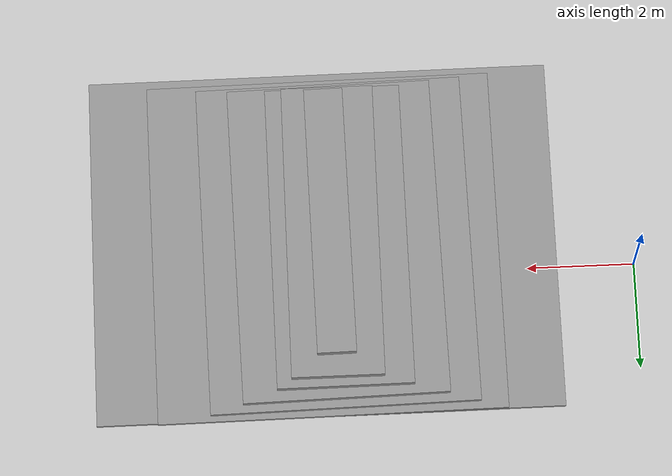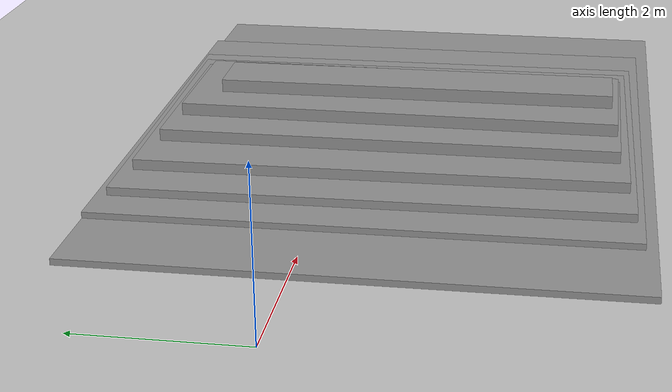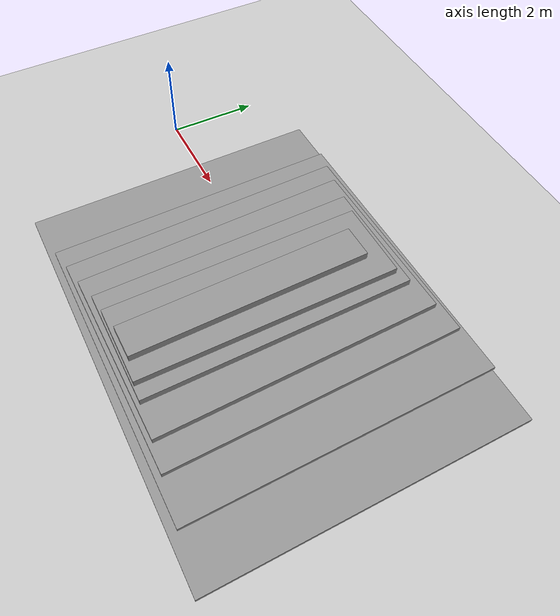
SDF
<sdf version="1.7">
 <world name="default">
  <model name="ground_plane">
   <static>1</static>
   <link name="link">
    <collision name="collision">
     <geometry><plane><normal>0 0 1</normal><size>100 100</size></plane></geometry>
     <surface><friction><ode><mu>0.7</mu><mu2>0.7</mu2></ode></friction></surface>
    </collision>
    <visual name="visual">
     <cast_shadows>0</cast_shadows>
     <geometry><plane><normal>0 0 1</normal><size>100 100</size></plane></geometry>
     <material>
      <script><uri>file://media/materials/scripts/gazebo.material</uri><name>Gazebo/Grey</name></script>
     </material>
    </visual>
   </link>
  </model>
  <light name="sun" type="directional">
   <pose>0 0 10 0 -0 0</pose>
   <diffuse>0.8 0.8 0.8 1</diffuse>
   <specular>0.1 0.1 0.1 1</specular>
   <attenuation>
    <range>1000</range>
    <constant>0.9</constant>
    <linear>0.01</linear>
    <quadratic>0.001</quadratic>
   </attenuation>
   <direction>-0.5 0.5 -1</direction>
   <spot><inner_angle>0</inner_angle><outer_angle>0</outer_angle><falloff>0</falloff></spot>
  </light>
  <gravity>0 0 -9.81</gravity>
  <magnetic_field>6e-06 2.3e-05 -4.2e-05</magnetic_field>
  <atmosphere type="adiabatic"/>
  <physics name="default_physics" default="0" type="ode">
   <max_step_size>0.001</max_step_size>
   <real_time_factor>1</real_time_factor>
   <real_time_update_rate>1000</real_time_update_rate>
  </physics>
  <scene><ambient>0.4 0.4 0.4 1</ambient><background>0.7 0.7 0.7 1</background><shadows>1</shadows></scene>
  <spherical_coordinates>
   <surface_model>EARTH_WGS84</surface_model>
   <latitude_deg>0</latitude_deg>
   <longitude_deg>0</longitude_deg>
   <elevation>0</elevation>
   <heading_deg>0</heading_deg>
  </spherical_coordinates>
  <model name="unit_box">
   <static>1</static>
   <pose>5.78133 -0.659851 0.038678 5e-06 1.5e-05 0.001025</pose>
   <link name="link">
    <inertial>
     <mass>1</mass>
     <inertia>
      <ixx>0.166667</ixx>
      <ixy>0</ixy>
      <ixz>0</ixz>
      <iyy>0.166667</iyy>
      <iyz>0</iyz>
      <izz>0.166667</izz>
     </inertia>
    </inertial>
    <collision name="collision"><geometry><box><size>8.68409 6.67615 0.0802598</size></box></geometry></collision>
    <visual name="visual">
     <geometry><box><size>8.68409 6.67615 0.0802598</size></box></geometry>
     <material>
      <script><name>Gazebo/Grey</name><uri>file://media/materials/scripts/gazebo.material</uri></script>
     </material>
    </visual>
   </link>
  </model>
  <model name="unit_box_clone_clone">
   <static>1</static>
   <pose>5.76077 -0.573205 0.117159 -1.3e-05 1e-05 0.006134</pose>
   <link name="link">
    <inertial>
     <mass>1</mass>
     <inertia>
      <ixx>0.166667</ixx>
      <ixy>0</ixy>
      <ixz>0</ixz>
      <iyy>0.166667</iyy>
      <iyz>0</iyz>
      <izz>0.166667</izz>
     </inertia>
    </inertial>
    <collision name="collision"><geometry><box><size>6.48949 6.53951 0.0795968</size></box></geometry></collision>
    <visual name="visual">
     <geometry><box><size>6.48949 6.53951 0.0795968</size></box></geometry>
     <material>
      <script><name>Gazebo/Grey</name><uri>file://media/materials/scripts/gazebo.material</uri></script>
     </material>
    </visual>
   </link>
  </model>
  <model name="unit_box_clone_clone_0">
   <static>1</static>
   <pose>5.54636 -0.5858 0.19901 -6.8e-05 1e-05 0.013495</pose>
   <link name="link">
    <inertial>
     <mass>1</mass>
     <inertia>
      <ixx>0.166667</ixx>
      <ixy>0</ixy>
      <ixz>0</ixz>
      <iyy>0.166667</iyy>
      <iyz>0</iyz>
      <izz>0.166667</izz>
     </inertia>
    </inertial>
    <collision name="collision"><geometry><box><size>5.00877 6.30633 0.125855</size></box></geometry></collision>
    <visual name="visual">
     <geometry><box><size>5.00877 6.30633 0.125855</size></box></geometry>
     <material>
      <script><name>Gazebo/Grey</name><uri>file://media/materials/scripts/gazebo.material</uri></script>
     </material>
    </visual>
   </link>
  </model>
  <model name="unit_box_clone_clone_1">
   <static>1</static>
   <pose>5.53214 -0.620945 0.264766 -6.9e-05 1e-05 0.016868</pose>
   <link name="link">
    <inertial>
     <mass>1</mass>
     <inertia>
      <ixx>0.166667</ixx>
      <ixy>0</ixy>
      <ixz>0</ixz>
      <iyy>0.166667</iyy>
      <iyz>0</iyz>
      <izz>0.166667</izz>
     </inertia>
    </inertial>
    <collision name="collision"><geometry><box><size>3.8324 6.06711 0.260792</size></box></geometry></collision>
    <visual name="visual">
     <geometry><box><size>3.8324 6.06711 0.260792</size></box></geometry>
     <material>
      <script><name>Gazebo/Grey</name><uri>file://media/materials/scripts/gazebo.material</uri></script>
     </material>
    </visual>
   </link>
  </model>
  <model name="unit_box_0">
   <static>1</static>
   <pose>5.50051 -0.666735 0.396683 1.6e-05 4.6e-05 0.004141</pose>
   <link name="link">
    <inertial>
     <mass>1</mass>
     <inertia>
      <ixx>0.166667</ixx>
      <ixy>0</ixy>
      <ixz>0</ixz>
      <iyy>0.166667</iyy>
      <iyz>0</iyz>
      <izz>0.166667</izz>
     </inertia>
    </inertial>
    <collision name="collision"><geometry><box><size>2.5387 5.78441 0.299001</size></box></geometry></collision>
    <visual name="visual">
     <geometry><box><size>2.5387 5.78441 0.299001</size></box></geometry>
     <material>
      <script><name>Gazebo/Grey</name><uri>file://media/materials/scripts/gazebo.material</uri></script>
     </material>
    </visual>
   </link>
  </model>
  <model name="unit_box_1">
   <static>1</static>
   <pose>5.61716 -0.726986 0.507139 1.6e-05 4.6e-05 -0.0027</pose>
   <link name="link">
    <inertial>
     <mass>1</mass>
     <inertia>
      <ixx>0.166667</ixx>
      <ixy>0</ixy>
      <ixz>0</ixz>
      <iyy>0.166667</iyy>
      <iyz>0</iyz>
      <izz>0.166667</izz>
     </inertia>
    </inertial>
    <collision name="collision"><geometry><box><size>1.72237 5.5961 0.392281</size></box></geometry></collision>
    <visual name="visual">
     <geometry><box><size>1.72237 5.5961 0.392281</size></box></geometry>
     <material>
      <script><name>Gazebo/Grey</name><uri>file://media/materials/scripts/gazebo.material</uri></script>
     </material>
    </visual>
   </link>
  </model>
  <model name="unit_box_2">
   <static>1</static>
   <pose>5.65457 -0.888156 0.620223 -0.000145 0.000178 0.010165</pose>
   <link name="link">
    <inertial>
     <mass>1</mass>
     <inertia>
      <ixx>0.166667</ixx>
      <ixy>0</ixy>
      <ixz>0</ixz>
      <iyy>0.166667</iyy>
      <iyz>0</iyz>
      <izz>0.166667</izz>
     </inertia>
    </inertial>
    <collision name="collision"><geometry><box><size>0.724392 5.10485 0.495052</size></box></geometry></collision>
    <visual name="visual">
     <geometry><box><size>0.724392 5.10485 0.495052</size></box></geometry>
     <material>
      <script><name>Gazebo/Grey</name><uri>file://media/materials/scripts/gazebo.material</uri></script>
     </material>
    </visual>
   </link>
  </model>
 </world>
</sdf>
